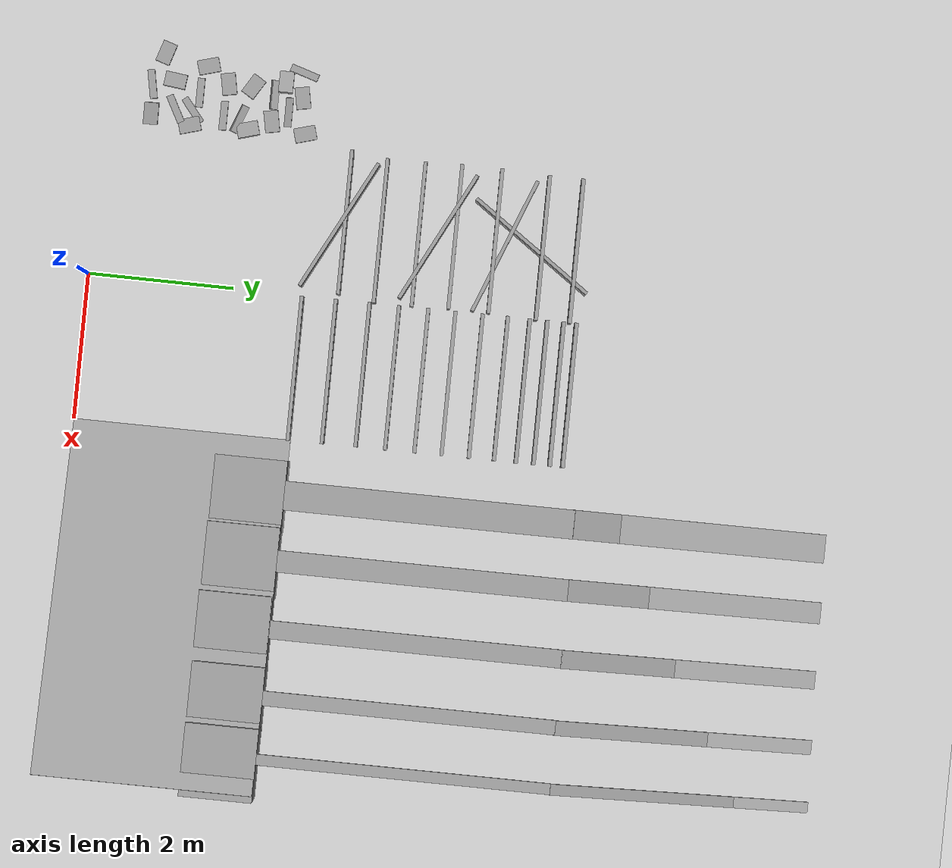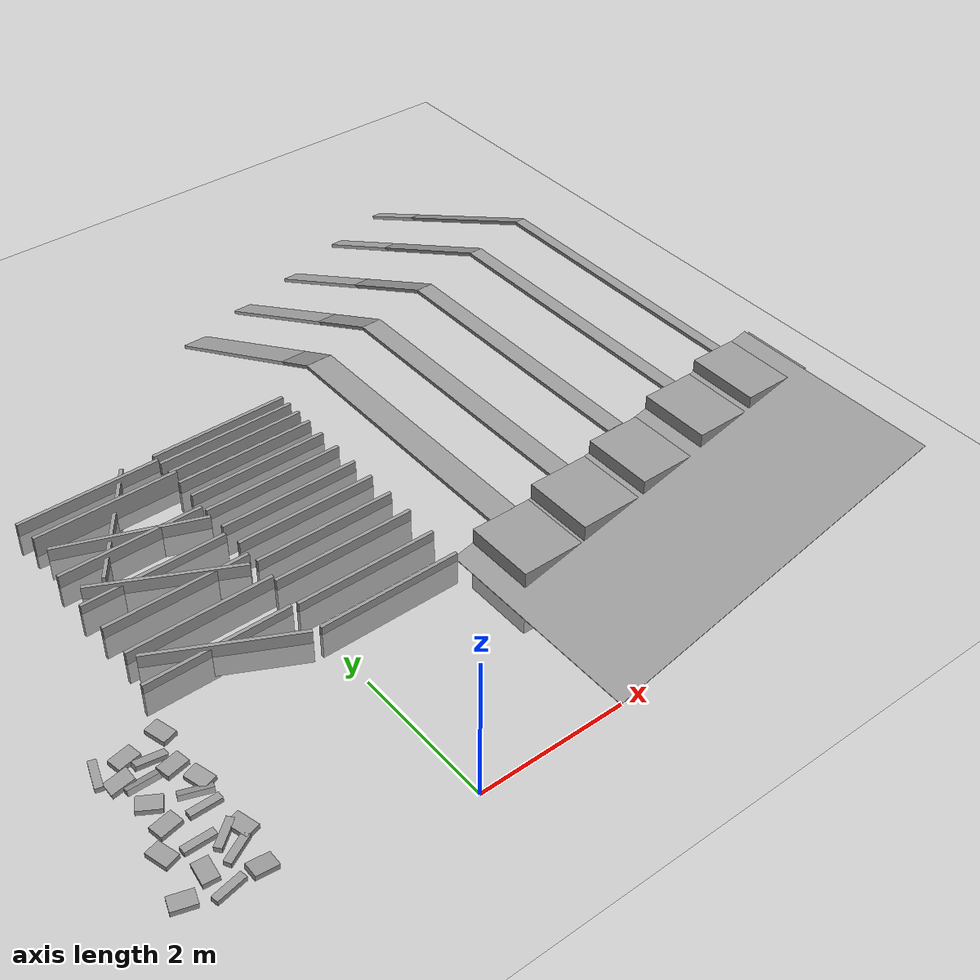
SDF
<sdf version="1.7">
 <world name="default">
  <model name="ground_plane">
   <static>1</static>
   <link name="link">
    <collision name="collision">
     <geometry><plane><normal>0 0 1</normal><size>100 100</size></plane></geometry>
     <surface><friction><ode><mu>200</mu><mu2>200</mu2></ode></friction></surface>
    </collision>
    <visual name="visual">
     <cast_shadows>0</cast_shadows>
     <geometry><plane><normal>0 0 1</normal><size>100 100</size></plane></geometry>
     <material>
      <script><uri>file://media/materials/scripts/gazebo.material</uri><name>Gazebo/Grey</name></script>
     </material>
    </visual>
   </link>
  </model>
  <model name="board_1">
   <pose>4.428 1.5 0.601 -0.247 1e-06 1.5708</pose>
   <link name="Stairs_5">
    <visual name="Stairs_5_Visual_0">
     <pose>0 0 0.005 0 -0 0</pose>
     <geometry><box><size>3 5 0.01</size></box></geometry>
     <material>
      <script><uri>file://media/materials/scripts/gazebo.material</uri><name>Gazebo/Grey</name></script>
      <ambient>1 1 1 1</ambient>
     </material>
     <meta><layer>0</layer></meta>
    </visual>
    <collision name="Stairs_5_Collision_0">
     <geometry><box><size>3 5 0.01</size></box></geometry>
     <pose>0 0 0.005 0 -0 0</pose>
     <surface><friction><ode><mu>200</mu><mu2>200</mu2></ode></friction></surface>
    </collision>
   </link>
   <static>1</static>
  </model>
  <model name="box_0.3_0.2_0.1">
   <pose>-3.01255 1.36536 0 0 -0 1.85347</pose>
   <link name="Stairs_9">
    <visual name="Stairs_9_Visual_0">
     <pose>0 0 0.035 0 -0 0</pose>
     <geometry><box><size>0.3 0.2 0.07</size></box></geometry>
     <material>
      <script><uri>file://media/materials/scripts/gazebo.material</uri><name>Gazebo/Grey</name></script>
      <ambient>1 1 1 1</ambient>
     </material>
     <meta><layer>0</layer></meta>
    </visual>
    <collision name="Stairs_9_Collision_0">
     <geometry><box><size>0.3 0.2 0.07</size></box></geometry>
     <pose>0 0 0.035 0 -0 0</pose>
     <surface><friction><ode><mu>200</mu><mu2>200</mu2></ode></friction></surface>
    </collision>
   </link>
   <static>1</static>
  </model>
  <model name="box_0.4_0.1_0.07_5">
   <pose>-2.38032 1.20344 0 0 -0 0.675768</pose>
   <link name="Stairs_14">
    <visual name="Stairs_14_Visual_0">
     <pose>0 0 0.035 0 -0 0</pose>
     <geometry><box><size>0.4 0.1 0.07</size></box></geometry>
     <material>
      <script><uri>file://media/materials/scripts/gazebo.material</uri><name>Gazebo/Grey</name></script>
      <ambient>1 1 1 1</ambient>
     </material>
     <meta><layer>0</layer></meta>
    </visual>
    <collision name="Stairs_14_Collision_0">
     <geometry><box><size>0.4 0.1 0.07</size></box></geometry>
     <pose>0 0 0.035 0 -0 0</pose>
     <surface><friction><ode><mu>200</mu><mu2>200</mu2></ode></friction></surface>
    </collision>
   </link>
   <static>1</static>
  </model>
  <model name="box_0.3_0.2_0.1_7">
   <pose>-2.29296 0.634577 0 0 0.156533 0</pose>
   <link name="Stairs_9">
    <visual name="Stairs_9_Visual_0">
     <pose>0 0 0.035 0 -0 0</pose>
     <geometry><box><size>0.3 0.2 0.07</size></box></geometry>
     <material>
      <script><uri>file://media/materials/scripts/gazebo.material</uri><name>Gazebo/Grey</name></script>
      <ambient>1 1 1 1</ambient>
     </material>
     <meta><layer>0</layer></meta>
    </visual>
    <collision name="Stairs_9_Collision_0">
     <geometry><box><size>0.3 0.2 0.07</size></box></geometry>
     <pose>0 0 0.035 0 -0 0</pose>
     <surface><friction><ode><mu>200</mu><mu2>200</mu2></ode></friction></surface>
    </collision>
   </link>
   <static>1</static>
  </model>
  <model name="box_0.3_0.2_0.1_9">
   <pose>-2.79379 1.66334 0 0 -0 0.193818</pose>
   <link name="Stairs_9">
    <visual name="Stairs_9_Visual_0">
     <pose>0 0 0.035 0 -0 0</pose>
     <geometry><box><size>0.3 0.2 0.07</size></box></geometry>
     <material>
      <script><uri>file://media/materials/scripts/gazebo.material</uri><name>Gazebo/Grey</name></script>
      <ambient>1 1 1 1</ambient>
     </material>
     <meta><layer>0</layer></meta>
    </visual>
    <collision name="Stairs_9_Collision_0">
     <geometry><box><size>0.3 0.2 0.07</size></box></geometry>
     <pose>0 0 0.035 0 -0 0</pose>
     <surface><friction><ode><mu>200</mu><mu2>200</mu2></ode></friction></surface>
    </collision>
   </link>
   <static>1</static>
  </model>
  <model name="box_0.3_0.2_0.1_14">
   <pose>-3.13761 0.765182 0 0 0 -0.305362</pose>
   <link name="Stairs_9">
    <visual name="Stairs_9_Visual_0">
     <pose>0 0 0.035 0 -0 0</pose>
     <geometry><box><size>0.3 0.2 0.07</size></box></geometry>
     <material>
      <script><uri>file://media/materials/scripts/gazebo.material</uri><name>Gazebo/Grey</name></script>
      <ambient>1 1 1 1</ambient>
     </material>
     <meta><layer>0</layer></meta>
    </visual>
    <collision name="Stairs_9_Collision_0">
     <geometry><box><size>0.3 0.2 0.07</size></box></geometry>
     <pose>0 0 0.035 0 -0 0</pose>
     <surface><friction><ode><mu>200</mu><mu2>200</mu2></ode></friction></surface>
    </collision>
   </link>
   <static>1</static>
  </model>
  <model name="box_0.4_0.1_0.07_21">
   <pose>-2.33177 1.84563 0 -0.297405 -0 -0.354338</pose>
   <link name="Stairs_14">
    <visual name="Stairs_14_Visual_0">
     <pose>0 0 0.035 0 -0 0</pose>
     <geometry><box><size>0.4 0.1 0.07</size></box></geometry>
     <material>
      <script><uri>file://media/materials/scripts/gazebo.material</uri><name>Gazebo/Grey</name></script>
      <ambient>1 1 1 1</ambient>
     </material>
     <meta><layer>0</layer></meta>
    </visual>
    <collision name="Stairs_14_Collision_0">
     <geometry><box><size>0.4 0.1 0.07</size></box></geometry>
     <pose>0 0 0.035 0 -0 0</pose>
     <surface><friction><ode><mu>200</mu><mu2>200</mu2></ode></friction></surface>
    </collision>
   </link>
   <static>1</static>
  </model>
  <model name="box_0.3_0.2_0.1_25">
   <pose>-2.77079 0.926758 0 0.04132 0.005073 -1.6929</pose>
   <link name="Stairs_9">
    <visual name="Stairs_9_Visual_0">
     <pose>0 0 0.035 0 -0 0</pose>
     <geometry><box><size>0.3 0.2 0.07</size></box></geometry>
     <material>
      <script><uri>file://media/materials/scripts/gazebo.material</uri><name>Gazebo/Grey</name></script>
      <ambient>1 1 1 1</ambient>
     </material>
     <meta><layer>0</layer></meta>
    </visual>
    <collision name="Stairs_9_Collision_0">
     <geometry><box><size>0.3 0.2 0.07</size></box></geometry>
     <pose>0 0 0.035 0 -0 0</pose>
     <surface><friction><ode><mu>200</mu><mu2>200</mu2></ode></friction></surface>
    </collision>
   </link>
   <static>1</static>
  </model>
  <model name="box_0.4_0.1_0.07_34">
   <pose>-2.37805 0.96323 0 0 -0 0.493596</pose>
   <link name="Stairs_14">
    <visual name="Stairs_14_Visual_0">
     <pose>0 0 0.035 0 -0 0</pose>
     <geometry><box><size>0.4 0.1 0.07</size></box></geometry>
     <material>
      <script><uri>file://media/materials/scripts/gazebo.material</uri><name>Gazebo/Grey</name></script>
      <ambient>1 1 1 1</ambient>
     </material>
     <meta><layer>0</layer></meta>
    </visual>
    <collision name="Stairs_14_Collision_0">
     <geometry><box><size>0.4 0.1 0.07</size></box></geometry>
     <pose>0 0 0.035 0 -0 0</pose>
     <surface><friction><ode><mu>200</mu><mu2>200</mu2></ode></friction></surface>
    </collision>
   </link>
   <static>1</static>
  </model>
  <model name="box_0.4_0.1_0.07_35">
   <pose>-2.3534 1.63255 0 0 -0 0</pose>
   <link name="Stairs_14">
    <visual name="Stairs_14_Visual_0">
     <pose>0 0 0.035 0 -0 0</pose>
     <geometry><box><size>0.4 0.1 0.07</size></box></geometry>
     <material>
      <script><uri>file://media/materials/scripts/gazebo.material</uri><name>Gazebo/Grey</name></script>
      <ambient>1 1 1 1</ambient>
     </material>
     <meta><layer>0</layer></meta>
    </visual>
    <collision name="Stairs_14_Collision_0">
     <geometry><box><size>0.4 0.1 0.07</size></box></geometry>
     <pose>0 0 0.035 0 -0 0</pose>
     <surface><friction><ode><mu>200</mu><mu2>200</mu2></ode></friction></surface>
    </collision>
   </link>
   <static>1</static>
  </model>
  <model name="box_0.4_0.1_0.07_36">
   <pose>-2.63647 1.28112 0 0 -0 0</pose>
   <link name="Stairs_14">
    <visual name="Stairs_14_Visual_0">
     <pose>0 0 0.035 0 -0 0</pose>
     <geometry><box><size>0.4 0.1 0.07</size></box></geometry>
     <material>
      <script><uri>file://media/materials/scripts/gazebo.material</uri><name>Gazebo/Grey</name></script>
      <ambient>1 1 1 1</ambient>
     </material>
     <meta><layer>0</layer></meta>
    </visual>
    <collision name="Stairs_14_Collision_0">
     <geometry><box><size>0.4 0.1 0.07</size></box></geometry>
     <pose>0 0 0.035 0 -0 0</pose>
     <surface><friction><ode><mu>200</mu><mu2>200</mu2></ode></friction></surface>
    </collision>
   </link>
   <static>1</static>
  </model>
  <model name="box_0.3_0.2_0.1_9_clone">
   <pose>-2.33907 2.30045 0 0 -0 0.193818</pose>
   <link name="Stairs_9">
    <visual name="Stairs_9_Visual_0">
     <pose>0 0 0.035 0 -0 0</pose>
     <geometry><box><size>0.3 0.2 0.07</size></box></geometry>
     <material>
      <script><uri>file://media/materials/scripts/gazebo.material</uri><name>Gazebo/Grey</name></script>
      <ambient>1 1 1 1</ambient>
     </material>
     <meta><layer>0</layer></meta>
    </visual>
    <collision name="Stairs_9_Collision_0">
     <geometry><box><size>0.3 0.2 0.07</size></box></geometry>
     <pose>0 0 0.035 0 -0 0</pose>
     <surface><friction><ode><mu>200</mu><mu2>200</mu2></ode></friction></surface>
    </collision>
   </link>
   <static>1</static>
  </model>
  <model name="box_0.3_0.2_0.1_9_clone_0">
   <pose>-2.70235 2.69599 0 0 -0 0.193818</pose>
   <link name="Stairs_9">
    <visual name="Stairs_9_Visual_0">
     <pose>0 0 0.035 0 -0 0</pose>
     <geometry><box><size>0.3 0.2 0.07</size></box></geometry>
     <material>
      <script><uri>file://media/materials/scripts/gazebo.material</uri><name>Gazebo/Grey</name></script>
      <ambient>1 1 1 1</ambient>
     </material>
     <meta><layer>0</layer></meta>
    </visual>
    <collision name="Stairs_9_Collision_0">
     <geometry><box><size>0.3 0.2 0.07</size></box></geometry>
     <pose>0 0 0.035 0 -0 0</pose>
     <surface><friction><ode><mu>200</mu><mu2>200</mu2></ode></friction></surface>
    </collision>
   </link>
   <static>1</static>
  </model>
  <model name="box_0.4_0.1_0.07_28_clone_2">
   <pose>-3.05202 2.68853 0 0 -0 1.2714</pose>
   <link name="Stairs_14">
    <visual name="Stairs_14_Visual_0">
     <pose>0 0 0.035 0 -0 0</pose>
     <geometry><box><size>0.4 0.1 0.07</size></box></geometry>
     <material>
      <script><uri>file://media/materials/scripts/gazebo.material</uri><name>Gazebo/Grey</name></script>
      <ambient>1 1 1 1</ambient>
     </material>
     <meta><layer>0</layer></meta>
    </visual>
    <collision name="Stairs_14_Collision_0">
     <geometry><box><size>0.4 0.1 0.07</size></box></geometry>
     <pose>0 0 0.035 0 -0 0</pose>
     <surface><friction><ode><mu>200</mu><mu2>200</mu2></ode></friction></surface>
    </collision>
   </link>
   <static>1</static>
  </model>
  <model name="box_0.4_0.1_0.07_36_clone">
   <pose>-2.70922 2.29202 0 -0.328405 0 0</pose>
   <link name="Stairs_14">
    <visual name="Stairs_14_Visual_0">
     <pose>0 0 0.035 0 -0 0</pose>
     <geometry><box><size>0.4 0.1 0.07</size></box></geometry>
     <material>
      <script><uri>file://media/materials/scripts/gazebo.material</uri><name>Gazebo/Grey</name></script>
      <ambient>1 1 1 1</ambient>
     </material>
     <meta><layer>0</layer></meta>
    </visual>
    <collision name="Stairs_14_Collision_0">
     <geometry><box><size>0.4 0.1 0.07</size></box></geometry>
     <pose>0 0 0.035 0 -0 0</pose>
     <surface><friction><ode><mu>200</mu><mu2>200</mu2></ode></friction></surface>
    </collision>
   </link>
   <static>1</static>
  </model>
  <model name="box_0.4_0.1_0.07_36_clone_0">
   <pose>-2.4986 2.52155 0 0 0.192346 0</pose>
   <link name="Stairs_14">
    <visual name="Stairs_14_Visual_0">
     <pose>0 0 0.035 0 -0 0</pose>
     <geometry><box><size>0.4 0.1 0.07</size></box></geometry>
     <material>
      <script><uri>file://media/materials/scripts/gazebo.material</uri><name>Gazebo/Grey</name></script>
      <ambient>1 1 1 1</ambient>
     </material>
     <meta><layer>0</layer></meta>
    </visual>
    <collision name="Stairs_14_Collision_0">
     <geometry><box><size>0.4 0.1 0.07</size></box></geometry>
     <pose>0 0 0.035 0 -0 0</pose>
     <surface><friction><ode><mu>200</mu><mu2>200</mu2></ode></friction></surface>
    </collision>
   </link>
   <static>1</static>
  </model>
  <model name="box_0.3_0.2_0.1_8_clone_clone_3">
   <pose>-2.7935 2.00782 0 0 0 -0.545678</pose>
   <link name="Stairs_9">
    <visual name="Stairs_9_Visual_0">
     <pose>0 0 0.035 0 -0 0</pose>
     <geometry><box><size>0.3 0.2 0.07</size></box></geometry>
     <material>
      <script><uri>file://media/materials/scripts/gazebo.material</uri><name>Gazebo/Grey</name></script>
      <ambient>1 1 1 1</ambient>
     </material>
     <meta><layer>0</layer></meta>
    </visual>
    <collision name="Stairs_9_Collision_0">
     <geometry><box><size>0.3 0.2 0.07</size></box></geometry>
     <pose>0 0 0.035 0 -0 0</pose>
     <surface><friction><ode><mu>200</mu><mu2>200</mu2></ode></friction></surface>
    </collision>
   </link>
   <static>1</static>
  </model>
  <model name="box_0.3_0.2_0.1_26_clone">
   <pose>-2.89032 2.44841 0 0 -0.200079 0</pose>
   <link name="Stairs_9">
    <visual name="Stairs_9_Visual_0">
     <pose>0 0 0.035 0 -0 0</pose>
     <geometry><box><size>0.3 0.2 0.07</size></box></geometry>
     <material>
      <script><uri>file://media/materials/scripts/gazebo.material</uri><name>Gazebo/Grey</name></script>
      <ambient>1 1 1 1</ambient>
     </material>
     <meta><layer>0</layer></meta>
    </visual>
    <collision name="Stairs_9_Collision_0">
     <geometry><box><size>0.3 0.2 0.07</size></box></geometry>
     <pose>0 0 0.035 0 -0 0</pose>
     <surface><friction><ode><mu>200</mu><mu2>200</mu2></ode></friction></surface>
    </collision>
   </link>
   <static>1</static>
  </model>
  <model name="box_0.3_0.2_0.1_clone_0">
   <pose>-2.21131 2.77777 0 0 -0 1.85347</pose>
   <link name="Stairs_9">
    <visual name="Stairs_9_Visual_0">
     <pose>0 0 0.035 0 -0 0</pose>
     <geometry><box><size>0.3 0.2 0.07</size></box></geometry>
     <material>
      <script><uri>file://media/materials/scripts/gazebo.material</uri><name>Gazebo/Grey</name></script>
      <ambient>1 1 1 1</ambient>
     </material>
     <meta><layer>0</layer></meta>
    </visual>
    <collision name="Stairs_9_Collision_0">
     <geometry><box><size>0.3 0.2 0.07</size></box></geometry>
     <pose>0 0 0.035 0 -0 0</pose>
     <surface><friction><ode><mu>200</mu><mu2>200</mu2></ode></friction></surface>
    </collision>
   </link>
   <static>1</static>
  </model>
  <model name="box_0.3_0.2_0.1_clone_1">
   <pose>-2.19194 1.98573 0 -0.098342 0 1.85347</pose>
   <link name="Stairs_9">
    <visual name="Stairs_9_Visual_0">
     <pose>0 0 0.035 0 -0 0</pose>
     <geometry><box><size>0.3 0.2 0.07</size></box></geometry>
     <material>
      <script><uri>file://media/materials/scripts/gazebo.material</uri><name>Gazebo/Grey</name></script>
      <ambient>1 1 1 1</ambient>
     </material>
     <meta><layer>0</layer></meta>
    </visual>
    <collision name="Stairs_9_Collision_0">
     <geometry><box><size>0.3 0.2 0.07</size></box></geometry>
     <pose>0 0 0.035 0 -0 0</pose>
     <surface><friction><ode><mu>200</mu><mu2>200</mu2></ode></friction></surface>
    </collision>
   </link>
   <static>1</static>
  </model>
  <model name="box_0.3_0.2_0.1_clone_2">
   <pose>-2.17677 1.17861 0 0 -0 1.85347</pose>
   <link name="Stairs_9">
    <visual name="Stairs_9_Visual_0">
     <pose>0 0 0.035 0 -0 0</pose>
     <geometry><box><size>0.3 0.2 0.07</size></box></geometry>
     <material>
      <script><uri>file://media/materials/scripts/gazebo.material</uri><name>Gazebo/Grey</name></script>
      <ambient>1 1 1 1</ambient>
     </material>
     <meta><layer>0</layer></meta>
    </visual>
    <collision name="Stairs_9_Collision_0">
     <geometry><box><size>0.3 0.2 0.07</size></box></geometry>
     <pose>0 0 0.035 0 -0 0</pose>
     <surface><friction><ode><mu>200</mu><mu2>200</mu2></ode></friction></surface>
    </collision>
   </link>
   <static>1</static>
  </model>
  <model name="box_0.4_0.1_0.07_10_clone">
   <pose>-2.68892 0.614335 0 0 -0 0.188316</pose>
   <link name="Stairs_14">
    <visual name="Stairs_14_Visual_0">
     <pose>0 0 0.035 0 -0 0</pose>
     <geometry><box><size>0.4 0.1 0.07</size></box></geometry>
     <material>
      <script><uri>file://media/materials/scripts/gazebo.material</uri><name>Gazebo/Grey</name></script>
      <ambient>1 1 1 1</ambient>
     </material>
     <meta><layer>0</layer></meta>
    </visual>
    <collision name="Stairs_14_Collision_0">
     <geometry><box><size>0.4 0.1 0.07</size></box></geometry>
     <pose>0 0 0.035 0 -0 0</pose>
     <surface><friction><ode><mu>200</mu><mu2>200</mu2></ode></friction></surface>
    </collision>
   </link>
   <static>1</static>
  </model>
  <model name="board_2_0.05_0.5">
   <pose>1.01214 2.93485 -0.395328 0 -0 1.57376</pose>
   <link name="Stairs_2">
    <visual name="Stairs_2_Visual_0">
     <pose>0.025 -0 0.25 0 -0 0</pose>
     <geometry><box><size>0.05 2 0.5</size></box></geometry>
     <material>
      <script><uri>file://media/materials/scripts/gazebo.material</uri><name>Gazebo/Grey</name></script>
      <ambient>1 1 1 1</ambient>
     </material>
     <meta><layer>0</layer></meta>
    </visual>
    <collision name="Stairs_2_Collision_0">
     <geometry><box><size>0.05 2 0.5</size></box></geometry>
     <pose>0.025 -0 0.25 0 -0 0</pose>
    </collision>
   </link>
   <static>1</static>
  </model>
  <model name="board_2_0.05_0.5_clone">
   <pose>1.00978 3.40497 -0.383537 0 -0 1.57376</pose>
   <link name="Stairs_2">
    <visual name="Stairs_2_Visual_0">
     <pose>0.025 -0 0.25 0 -0 0</pose>
     <geometry><box><size>0.05 2 0.5</size></box></geometry>
     <material>
      <script><uri>file://media/materials/scripts/gazebo.material</uri><name>Gazebo/Grey</name></script>
      <ambient>1 1 1 1</ambient>
     </material>
     <meta><layer>0</layer></meta>
    </visual>
    <collision name="Stairs_2_Collision_0">
     <geometry><box><size>0.05 2 0.5</size></box></geometry>
     <pose>0.025 -0 0.25 0 -0 0</pose>
    </collision>
   </link>
   <static>1</static>
  </model>
  <model name="board_2_0.05_0.5_clone_0">
   <pose>1.00493 3.87218 -0.359612 0 -0 1.57376</pose>
   <link name="Stairs_2">
    <visual name="Stairs_2_Visual_0">
     <pose>0.025 -0 0.25 0 -0 0</pose>
     <geometry><box><size>0.05 2 0.5</size></box></geometry>
     <material>
      <script><uri>file://media/materials/scripts/gazebo.material</uri><name>Gazebo/Grey</name></script>
      <ambient>1 1 1 1</ambient>
     </material>
     <meta><layer>0</layer></meta>
    </visual>
    <collision name="Stairs_2_Collision_0">
     <geometry><box><size>0.05 2 0.5</size></box></geometry>
     <pose>0.025 -0 0.25 0 -0 0</pose>
    </collision>
   </link>
   <static>1</static>
  </model>
  <model name="board_2_0.05_0.5_clone_1">
   <pose>1.0088 4.28081 -0.351548 0 -0 1.57376</pose>
   <link name="Stairs_2">
    <visual name="Stairs_2_Visual_0">
     <pose>0.025 -0 0.25 0 -0 0</pose>
     <geometry><box><size>0.05 2 0.5</size></box></geometry>
     <material>
      <script><uri>file://media/materials/scripts/gazebo.material</uri><name>Gazebo/Grey</name></script>
      <ambient>1 1 1 1</ambient>
     </material>
     <meta><layer>0</layer></meta>
    </visual>
    <collision name="Stairs_2_Collision_0">
     <geometry><box><size>0.05 2 0.5</size></box></geometry>
     <pose>0.025 -0 0.25 0 -0 0</pose>
    </collision>
   </link>
   <static>1</static>
  </model>
  <model name="board_2_0.05_0.5_clone_2">
   <pose>1.00664 4.68522 -0.348581 0 -0 1.57376</pose>
   <link name="Stairs_2">
    <visual name="Stairs_2_Visual_0">
     <pose>0.025 -0 0.25 0 -0 0</pose>
     <geometry><box><size>0.05 2 0.5</size></box></geometry>
     <material>
      <script><uri>file://media/materials/scripts/gazebo.material</uri><name>Gazebo/Grey</name></script>
      <ambient>1 1 1 1</ambient>
     </material>
     <meta><layer>0</layer></meta>
    </visual>
    <collision name="Stairs_2_Collision_0">
     <geometry><box><size>0.05 2 0.5</size></box></geometry>
     <pose>0.025 -0 0.25 0 -0 0</pose>
    </collision>
   </link>
   <static>1</static>
  </model>
  <model name="board_2_0.05_0.5_clone_3">
   <pose>1.006 5.06117 -0.355292 0 -0 1.57376</pose>
   <link name="Stairs_2">
    <visual name="Stairs_2_Visual_0">
     <pose>0.025 -0 0.25 0 -0 0</pose>
     <geometry><box><size>0.05 2 0.5</size></box></geometry>
     <material>
      <script><uri>file://media/materials/scripts/gazebo.material</uri><name>Gazebo/Grey</name></script>
      <ambient>1 1 1 1</ambient>
     </material>
     <meta><layer>0</layer></meta>
    </visual>
    <collision name="Stairs_2_Collision_0">
     <geometry><box><size>0.05 2 0.5</size></box></geometry>
     <pose>0.025 -0 0.25 0 -0 0</pose>
    </collision>
   </link>
   <static>1</static>
  </model>
  <model name="board_2_0.05_0.5_clone_4">
   <pose>1.00757 5.43904 -0.3493 0 -0 1.57376</pose>
   <link name="Stairs_2">
    <visual name="Stairs_2_Visual_0">
     <pose>0.025 -0 0.25 0 -0 0</pose>
     <geometry><box><size>0.05 2 0.5</size></box></geometry>
     <material>
      <script><uri>file://media/materials/scripts/gazebo.material</uri><name>Gazebo/Grey</name></script>
      <ambient>1 1 1 1</ambient>
     </material>
     <meta><layer>0</layer></meta>
    </visual>
    <collision name="Stairs_2_Collision_0">
     <geometry><box><size>0.05 2 0.5</size></box></geometry>
     <pose>0.025 -0 0.25 0 -0 0</pose>
    </collision>
   </link>
   <static>1</static>
  </model>
  <model name="board_2_0.05_0.5_clone_5">
   <pose>1.00439 5.78761 -0.34635 0 -0 1.57376</pose>
   <link name="Stairs_2">
    <visual name="Stairs_2_Visual_0">
     <pose>0.025 -0 0.25 0 -0 0</pose>
     <geometry><box><size>0.05 2 0.5</size></box></geometry>
     <material>
      <script><uri>file://media/materials/scripts/gazebo.material</uri><name>Gazebo/Grey</name></script>
      <ambient>1 1 1 1</ambient>
     </material>
     <meta><layer>0</layer></meta>
    </visual>
    <collision name="Stairs_2_Collision_0">
     <geometry><box><size>0.05 2 0.5</size></box></geometry>
     <pose>0.025 -0 0.25 0 -0 0</pose>
    </collision>
   </link>
   <static>1</static>
  </model>
  <model name="board_2_0.05_0.5_clone_6">
   <pose>1.00784 6.0909 -0.337509 0 -0 1.57376</pose>
   <link name="Stairs_2">
    <visual name="Stairs_2_Visual_0">
     <pose>0.025 -0 0.25 0 -0 0</pose>
     <geometry><box><size>0.05 2 0.5</size></box></geometry>
     <material>
      <script><uri>file://media/materials/scripts/gazebo.material</uri><name>Gazebo/Grey</name></script>
      <ambient>1 1 1 1</ambient>
     </material>
     <meta><layer>0</layer></meta>
    </visual>
    <collision name="Stairs_2_Collision_0">
     <geometry><box><size>0.05 2 0.5</size></box></geometry>
     <pose>0.025 -0 0.25 0 -0 0</pose>
    </collision>
   </link>
   <static>1</static>
  </model>
  <model name="board_2_0.05_0.5_clone_7">
   <pose>1.0043 6.33401 -0.331651 0 -0 1.57376</pose>
   <link name="Stairs_2">
    <visual name="Stairs_2_Visual_0">
     <pose>0.025 -0 0.25 0 -0 0</pose>
     <geometry><box><size>0.05 2 0.5</size></box></geometry>
     <material>
      <script><uri>file://media/materials/scripts/gazebo.material</uri><name>Gazebo/Grey</name></script>
      <ambient>1 1 1 1</ambient>
     </material>
     <meta><layer>0</layer></meta>
    </visual>
    <collision name="Stairs_2_Collision_0">
     <geometry><box><size>0.05 2 0.5</size></box></geometry>
     <pose>0.025 -0 0.25 0 -0 0</pose>
    </collision>
   </link>
   <static>1</static>
  </model>
  <model name="board_2_0.05_0.5_clone_8">
   <pose>1.00649 6.55911 -0.331651 0 -0 1.57376</pose>
   <link name="Stairs_2">
    <visual name="Stairs_2_Visual_0">
     <pose>0.025 -0 0.25 0 -0 0</pose>
     <geometry><box><size>0.05 2 0.5</size></box></geometry>
     <material>
      <script><uri>file://media/materials/scripts/gazebo.material</uri><name>Gazebo/Grey</name></script>
      <ambient>1 1 1 1</ambient>
     </material>
     <meta><layer>0</layer></meta>
    </visual>
    <collision name="Stairs_2_Collision_0">
     <geometry><box><size>0.05 2 0.5</size></box></geometry>
     <pose>0.025 -0 0.25 0 -0 0</pose>
    </collision>
   </link>
   <static>1</static>
  </model>
  <model name="board_2_0.05_0.5_clone_9">
   <pose>1.00324 6.73719 -0.331651 0 -0 1.57376</pose>
   <link name="Stairs_2">
    <visual name="Stairs_2_Visual_0">
     <pose>0.025 -0 0.25 0 -0 0</pose>
     <geometry><box><size>0.05 2 0.5</size></box></geometry>
     <material>
      <script><uri>file://media/materials/scripts/gazebo.material</uri><name>Gazebo/Grey</name></script>
      <ambient>1 1 1 1</ambient>
     </material>
     <meta><layer>0</layer></meta>
    </visual>
    <collision name="Stairs_2_Collision_0">
     <geometry><box><size>0.05 2 0.5</size></box></geometry>
     <pose>0.025 -0 0.25 0 -0 0</pose>
    </collision>
   </link>
   <static>1</static>
  </model>
  <model name="board_2_0.05_0.5_clone_10">
   <pose>-1.02574 3.34784 -0.331651 0 -0 1.09588</pose>
   <link name="Stairs_2">
    <visual name="Stairs_2_Visual_0">
     <pose>0.025 -0 0.25 0 -0 0</pose>
     <geometry><box><size>0.05 2 0.5</size></box></geometry>
     <material>
      <script><uri>file://media/materials/scripts/gazebo.material</uri><name>Gazebo/Grey</name></script>
      <ambient>1 1 1 1</ambient>
     </material>
     <meta><layer>0</layer></meta>
    </visual>
    <collision name="Stairs_2_Collision_0">
     <geometry><box><size>0.05 2 0.5</size></box></geometry>
     <pose>0.025 -0 0.25 0 -0 0</pose>
    </collision>
   </link>
   <static>1</static>
  </model>
  <model name="board_2_0.05_0.5_clone_11">
   <pose>-1.06224 3.42152 -0.385461 0 -0 1.57376</pose>
   <link name="Stairs_2">
    <visual name="Stairs_2_Visual_0">
     <pose>0.025 -0 0.25 0 -0 0</pose>
     <geometry><box><size>0.05 2 0.5</size></box></geometry>
     <material>
      <script><uri>file://media/materials/scripts/gazebo.material</uri><name>Gazebo/Grey</name></script>
      <ambient>1 1 1 1</ambient>
     </material>
     <meta><layer>0</layer></meta>
    </visual>
    <collision name="Stairs_2_Collision_0">
     <geometry><box><size>0.05 2 0.5</size></box></geometry>
     <pose>0.025 -0 0.25 0 -0 0</pose>
    </collision>
   </link>
   <static>1</static>
  </model>
  <model name="board_2_0.05_0.5_clone_12">
   <pose>-0.988098 3.92215 -0.331651 0 -0 1.57376</pose>
   <link name="Stairs_2">
    <visual name="Stairs_2_Visual_0">
     <pose>0.025 -0 0.25 0 -0 0</pose>
     <geometry><box><size>0.05 2 0.5</size></box></geometry>
     <material>
      <script><uri>file://media/materials/scripts/gazebo.material</uri><name>Gazebo/Grey</name></script>
      <ambient>1 1 1 1</ambient>
     </material>
     <meta><layer>0</layer></meta>
    </visual>
    <collision name="Stairs_2_Collision_0">
     <geometry><box><size>0.05 2 0.5</size></box></geometry>
     <pose>0.025 -0 0.25 0 -0 0</pose>
    </collision>
   </link>
   <static>1</static>
  </model>
  <model name="board_2_0.05_0.5_clone_13">
   <pose>-0.996329 4.44592 -0.352741 0 -0 1.57376</pose>
   <link name="Stairs_2">
    <visual name="Stairs_2_Visual_0">
     <pose>0.025 -0 0.25 0 -0 0</pose>
     <geometry><box><size>0.05 2 0.5</size></box></geometry>
     <material>
      <script><uri>file://media/materials/scripts/gazebo.material</uri><name>Gazebo/Grey</name></script>
      <ambient>1 1 1 1</ambient>
     </material>
     <meta><layer>0</layer></meta>
    </visual>
    <collision name="Stairs_2_Collision_0">
     <geometry><box><size>0.05 2 0.5</size></box></geometry>
     <pose>0.025 -0 0.25 0 -0 0</pose>
    </collision>
   </link>
   <static>1</static>
  </model>
  <model name="board_2_0.05_0.5_clone_14">
   <pose>-1.01246 4.95271 -0.384988 0 -0 1.57376</pose>
   <link name="Stairs_2">
    <visual name="Stairs_2_Visual_0">
     <pose>0.025 -0 0.25 0 -0 0</pose>
     <geometry><box><size>0.05 2 0.5</size></box></geometry>
     <material>
      <script><uri>file://media/materials/scripts/gazebo.material</uri><name>Gazebo/Grey</name></script>
      <ambient>1 1 1 1</ambient>
     </material>
     <meta><layer>0</layer></meta>
    </visual>
    <collision name="Stairs_2_Collision_0">
     <geometry><box><size>0.05 2 0.5</size></box></geometry>
     <pose>0.025 -0 0.25 0 -0 0</pose>
    </collision>
   </link>
   <static>1</static>
  </model>
  <model name="board_2_0.05_0.5_clone_15">
   <pose>-1.0066 5.50673 -0.331651 0 -0 1.57376</pose>
   <link name="Stairs_2">
    <visual name="Stairs_2_Visual_0">
     <pose>0.025 -0 0.25 0 -0 0</pose>
     <geometry><box><size>0.05 2 0.5</size></box></geometry>
     <material>
      <script><uri>file://media/materials/scripts/gazebo.material</uri><name>Gazebo/Grey</name></script>
      <ambient>1 1 1 1</ambient>
     </material>
     <meta><layer>0</layer></meta>
    </visual>
    <collision name="Stairs_2_Collision_0">
     <geometry><box><size>0.05 2 0.5</size></box></geometry>
     <pose>0.025 -0 0.25 0 -0 0</pose>
    </collision>
   </link>
   <static>1</static>
  </model>
  <model name="board_2_0.05_0.5_clone_16">
   <pose>-0.966688 6.02456 -0.391504 0 -0 2.52919</pose>
   <link name="Stairs_2">
    <visual name="Stairs_2_Visual_0">
     <pose>0.025 -0 0.25 0 -0 0</pose>
     <geometry><box><size>0.05 2 0.5</size></box></geometry>
     <material>
      <script><uri>file://media/materials/scripts/gazebo.material</uri><name>Gazebo/Grey</name></script>
      <ambient>1 1 1 1</ambient>
     </material>
     <meta><layer>0</layer></meta>
    </visual>
    <collision name="Stairs_2_Collision_0">
     <geometry><box><size>0.05 2 0.5</size></box></geometry>
     <pose>0.025 -0 0.25 0 -0 0</pose>
    </collision>
   </link>
   <static>1</static>
  </model>
  <model name="board_2_0.05_0.5_clone_17">
   <pose>-0.971435 6.16534 -0.217573 0 -0 1.57376</pose>
   <link name="Stairs_2">
    <visual name="Stairs_2_Visual_0">
     <pose>0.025 -0 0.25 0 -0 0</pose>
     <geometry><box><size>0.05 2 0.5</size></box></geometry>
     <material>
      <script><uri>file://media/materials/scripts/gazebo.material</uri><name>Gazebo/Grey</name></script>
      <ambient>1 1 1 1</ambient>
     </material>
     <meta><layer>0</layer></meta>
    </visual>
    <collision name="Stairs_2_Collision_0">
     <geometry><box><size>0.05 2 0.5</size></box></geometry>
     <pose>0.025 -0 0.25 0 -0 0</pose>
    </collision>
   </link>
   <static>1</static>
  </model>
  <model name="board_2_0.05_0.5_clone_18">
   <pose>-0.995203 4.72231 -0.331651 0 -0 1.10153</pose>
   <link name="Stairs_2">
    <visual name="Stairs_2_Visual_0">
     <pose>0.025 -0 0.25 0 -0 0</pose>
     <geometry><box><size>0.05 2 0.5</size></box></geometry>
     <material>
      <script><uri>file://media/materials/scripts/gazebo.material</uri><name>Gazebo/Grey</name></script>
      <ambient>1 1 1 1</ambient>
     </material>
     <meta><layer>0</layer></meta>
    </visual>
    <collision name="Stairs_2_Collision_0">
     <geometry><box><size>0.05 2 0.5</size></box></geometry>
     <pose>0.025 -0 0.25 0 -0 0</pose>
    </collision>
   </link>
   <static>1</static>
  </model>
  <model name="board_2_0.05_0.5_clone_19">
   <pose>-0.958025 5.64686 -0.331651 0 -0 1.20195</pose>
   <link name="Stairs_2">
    <visual name="Stairs_2_Visual_0">
     <pose>0.025 -0 0.25 0 -0 0</pose>
     <geometry><box><size>0.05 2 0.5</size></box></geometry>
     <material>
      <script><uri>file://media/materials/scripts/gazebo.material</uri><name>Gazebo/Grey</name></script>
      <ambient>1 1 1 1</ambient>
     </material>
     <meta><layer>0</layer></meta>
    </visual>
    <collision name="Stairs_2_Collision_0">
     <geometry><box><size>0.05 2 0.5</size></box></geometry>
     <pose>0.025 -0 0.25 0 -0 0</pose>
    </collision>
   </link>
   <static>1</static>
  </model>
  <model name="board_2_0.05_0.5_clone_20">
   <pose>-0.97812 6.63381 -0.331651 0 -0 1.57376</pose>
   <link name="Stairs_2">
    <visual name="Stairs_2_Visual_0">
     <pose>0.025 -0 0.25 0 -0 0</pose>
     <geometry><box><size>0.05 2 0.5</size></box></geometry>
     <material>
      <script><uri>file://media/materials/scripts/gazebo.material</uri><name>Gazebo/Grey</name></script>
      <ambient>1 1 1 1</ambient>
     </material>
     <meta><layer>0</layer></meta>
    </visual>
    <collision name="Stairs_2_Collision_0">
     <geometry><box><size>0.05 2 0.5</size></box></geometry>
     <pose>0.025 -0 0.25 0 -0 0</pose>
    </collision>
   </link>
   <static>1</static>
  </model>
  <model name="board_4_0.4_0.05">
   <pose>2.76692 4.99699 0.246036 0 -0 0</pose>
   <link name="Stairs_6">
    <visual name="Stairs_6_Visual_0">
     <pose>0 0 0.025 0 -0 0</pose>
     <geometry><box><size>0.4 4 0.05</size></box></geometry>
     <material>
      <script><uri>file://media/materials/scripts/gazebo.material</uri><name>Gazebo/Grey</name></script>
      <ambient>1 1 1 1</ambient>
     </material>
     <meta><layer>0</layer></meta>
    </visual>
    <collision name="Stairs_6_Collision_0">
     <geometry><box><size>0.4 4 0.05</size></box></geometry>
     <pose>0 0 0.025 0 -0 0</pose>
    </collision>
   </link>
   <static>1</static>
  </model>
  <model name="board_4_0.3_0.05">
   <pose>3.66782 4.99735 0.47498 0 -0 0</pose>
   <link name="Stairs_9">
    <visual name="Stairs_9_Visual_0">
     <pose>0 0 0.025 0 -0 0</pose>
     <geometry><box><size>0.3 4 0.05</size></box></geometry>
     <material>
      <script><uri>file://media/materials/scripts/gazebo.material</uri><name>Gazebo/Grey</name></script>
      <ambient>1 1 1 1</ambient>
     </material>
     <meta><layer>0</layer></meta>
    </visual>
    <collision name="Stairs_9_Collision_0">
     <geometry><box><size>0.3 4 0.05</size></box></geometry>
     <pose>0 0 0.025 0 -0 0</pose>
    </collision>
   </link>
   <static>1</static>
  </model>
  <model name="board_4_0.25_0.05">
   <pose>4.60007 4.99969 0.688816 0 -0 0</pose>
   <link name="Stairs_11">
    <visual name="Stairs_11_Visual_0">
     <pose>0 0 0.025 0 -0 0</pose>
     <geometry><box><size>0.25 4 0.05</size></box></geometry>
     <material>
      <script><uri>file://media/materials/scripts/gazebo.material</uri><name>Gazebo/Grey</name></script>
      <ambient>1 1 1 1</ambient>
     </material>
     <meta><layer>0</layer></meta>
    </visual>
    <collision name="Stairs_11_Collision_0">
     <geometry><box><size>0.25 4 0.05</size></box></geometry>
     <pose>0 0 0.025 0 -0 0</pose>
    </collision>
   </link>
   <static>1</static>
  </model>
  <model name="board_4_0.2_0.05">
   <pose>5.52485 4.99957 0.924214 0 -0 0</pose>
   <link name="Stairs_13">
    <visual name="Stairs_13_Visual_0">
     <pose>0 0 0.025 0 -0 0</pose>
     <geometry><box><size>0.2 4 0.05</size></box></geometry>
     <material>
      <script><uri>file://media/materials/scripts/gazebo.material</uri><name>Gazebo/Grey</name></script>
      <ambient>1 1 1 1</ambient>
     </material>
     <meta><layer>0</layer></meta>
    </visual>
    <collision name="Stairs_13_Collision_0">
     <geometry><box><size>0.2 4 0.05</size></box></geometry>
     <pose>0 0 0.025 0 -0 0</pose>
    </collision>
   </link>
   <static>1</static>
  </model>
  <model name="board_4_0.15_0.05_0">
   <pose>6.34765 5.0037 1.11333 0 -0 0</pose>
   <link name="Stairs_16">
    <visual name="Stairs_16_Visual_0">
     <pose>0 0 0.025 0 -0 0</pose>
     <geometry><box><size>0.15 4 0.05</size></box></geometry>
     <material>
      <script><uri>file://media/materials/scripts/gazebo.material</uri><name>Gazebo/Grey</name></script>
      <ambient>1 1 1 1</ambient>
     </material>
     <meta><layer>0</layer></meta>
    </visual>
    <collision name="Stairs_16_Collision_0">
     <geometry><box><size>0.15 4 0.05</size></box></geometry>
     <pose>0 0 0.025 0 -0 0</pose>
    </collision>
   </link>
   <static>1</static>
  </model>
  <model name="board_4_0.15_0.05_0_clone">
   <pose>6.35139 8.79917 0.284176 -0.430786 0 0</pose>
   <link name="Stairs_16">
    <visual name="Stairs_16_Visual_0">
     <pose>0 0 0.025 0 -0 0</pose>
     <geometry><box><size>0.15 4 0.05</size></box></geometry>
     <material>
      <script><uri>file://media/materials/scripts/gazebo.material</uri><name>Gazebo/Grey</name></script>
      <ambient>1 1 1 1</ambient>
     </material>
     <meta><layer>0</layer></meta>
    </visual>
    <collision name="Stairs_16_Collision_0">
     <geometry><box><size>0.15 4 0.05</size></box></geometry>
     <pose>0 0 0.025 0 -0 0</pose>
    </collision>
   </link>
   <static>1</static>
  </model>
  <model name="board_4_0.2_0.05_clone">
   <pose>5.52897 8.78835 0.087923 -0.434905 0 0</pose>
   <link name="Stairs_13">
    <visual name="Stairs_13_Visual_0">
     <pose>0 0 0.025 0 -0 0</pose>
     <geometry><box><size>0.2 4 0.05</size></box></geometry>
     <material>
      <script><uri>file://media/materials/scripts/gazebo.material</uri><name>Gazebo/Grey</name></script>
      <ambient>1 1 1 1</ambient>
     </material>
     <meta><layer>0</layer></meta>
    </visual>
    <collision name="Stairs_13_Collision_0">
     <geometry><box><size>0.2 4 0.05</size></box></geometry>
     <pose>0 0 0.025 0 -0 0</pose>
    </collision>
   </link>
   <static>1</static>
  </model>
  <model name="board_4_0.25_0.05_clone">
   <pose>4.6022 8.77708 -0.161693 -0.443583 0 0</pose>
   <link name="Stairs_11">
    <visual name="Stairs_11_Visual_0">
     <pose>0 0 0.025 0 -0 0</pose>
     <geometry><box><size>0.25 4 0.05</size></box></geometry>
     <material>
      <script><uri>file://media/materials/scripts/gazebo.material</uri><name>Gazebo/Grey</name></script>
      <ambient>1 1 1 1</ambient>
     </material>
     <meta><layer>0</layer></meta>
    </visual>
    <collision name="Stairs_11_Collision_0">
     <geometry><box><size>0.25 4 0.05</size></box></geometry>
     <pose>0 0 0.025 0 -0 0</pose>
    </collision>
   </link>
   <static>1</static>
  </model>
  <model name="board_4_0.3_0.05_clone">
   <pose>3.66598 8.78172 -0.377004 -0.443238 0 0</pose>
   <link name="Stairs_9">
    <visual name="Stairs_9_Visual_0">
     <pose>0 0 0.025 0 -0 0</pose>
     <geometry><box><size>0.3 4 0.05</size></box></geometry>
     <material>
      <script><uri>file://media/materials/scripts/gazebo.material</uri><name>Gazebo/Grey</name></script>
      <ambient>1 1 1 1</ambient>
     </material>
     <meta><layer>0</layer></meta>
    </visual>
    <collision name="Stairs_9_Collision_0">
     <geometry><box><size>0.3 4 0.05</size></box></geometry>
     <pose>0 0 0.025 0 -0 0</pose>
    </collision>
   </link>
   <static>1</static>
  </model>
  <model name="board_4_0.4_0.05_clone">
   <pose>2.76484 8.77648 -0.612029 -0.447552 0 0</pose>
   <link name="Stairs_6">
    <visual name="Stairs_6_Visual_0">
     <pose>0 0 0.025 0 -0 0</pose>
     <geometry><box><size>0.4 4 0.05</size></box></geometry>
     <material>
      <script><uri>file://media/materials/scripts/gazebo.material</uri><name>Gazebo/Grey</name></script>
      <ambient>1 1 1 1</ambient>
     </material>
     <meta><layer>0</layer></meta>
    </visual>
    <collision name="Stairs_6_Collision_0">
     <geometry><box><size>0.4 4 0.05</size></box></geometry>
     <pose>0 0 0.025 0 -0 0</pose>
    </collision>
   </link>
   <static>1</static>
  </model>
  <model name="box_1_1_1_clone_clone">
   <pose>2.79391 2.50097 -0.704846 0 -0 0</pose>
   <link name="Stairs_8">
    <visual name="Stairs_8_Visual_0">
     <pose>0 0 0.5 0 -0 0</pose>
     <geometry><box><size>1 1 1</size></box></geometry>
     <material>
      <script><uri>file://media/materials/scripts/gazebo.material</uri><name>Gazebo/Grey</name></script>
      <ambient>1 1 1 1</ambient>
     </material>
     <meta><layer>0</layer></meta>
    </visual>
    <collision name="Stairs_8_Collision_0">
     <geometry><box><size>1 1 1</size></box></geometry>
     <pose>0 0 0.5 0 -0 0</pose>
     <surface><friction><ode><mu>200</mu><mu2>200</mu2></ode></friction></surface>
    </collision>
   </link>
   <static>1</static>
  </model>
  <model name="box_1_1_1_clone_clone_clone">
   <pose>3.71195 2.4987 -0.475107 0 -0 0</pose>
   <link name="Stairs_8">
    <visual name="Stairs_8_Visual_0">
     <pose>0 0 0.5 0 -0 0</pose>
     <geometry><box><size>1 1 1</size></box></geometry>
     <material>
      <script><uri>file://media/materials/scripts/gazebo.material</uri><name>Gazebo/Grey</name></script>
      <ambient>1 1 1 1</ambient>
     </material>
     <meta><layer>0</layer></meta>
    </visual>
    <collision name="Stairs_8_Collision_0">
     <geometry><box><size>1 1 1</size></box></geometry>
     <pose>0 0 0.5 0 -0 0</pose>
     <surface><friction><ode><mu>200</mu><mu2>200</mu2></ode></friction></surface>
    </collision>
   </link>
   <static>1</static>
  </model>
  <model name="box_1_1_1_clone_clone_clone_clone">
   <pose>4.65657 2.49159 -0.260434 0 -0 0</pose>
   <link name="Stairs_8">
    <visual name="Stairs_8_Visual_0">
     <pose>0 0 0.5 0 -0 0</pose>
     <geometry><box><size>1 1 1</size></box></geometry>
     <material>
      <script><uri>file://media/materials/scripts/gazebo.material</uri><name>Gazebo/Grey</name></script>
      <ambient>1 1 1 1</ambient>
     </material>
     <meta><layer>0</layer></meta>
    </visual>
    <collision name="Stairs_8_Collision_0">
     <geometry><box><size>1 1 1</size></box></geometry>
     <pose>0 0 0.5 0 -0 0</pose>
     <surface><friction><ode><mu>200</mu><mu2>200</mu2></ode></friction></surface>
    </collision>
   </link>
   <static>1</static>
  </model>
  <model name="box_1_1_1_clone_clone_clone_clone_clone">
   <pose>5.61541 2.50518 -0.024366 0 -0 0</pose>
   <link name="Stairs_8">
    <visual name="Stairs_8_Visual_0">
     <pose>0 0 0.5 0 -0 0</pose>
     <geometry><box><size>1 1 1</size></box></geometry>
     <material>
      <script><uri>file://media/materials/scripts/gazebo.material</uri><name>Gazebo/Grey</name></script>
      <ambient>1 1 1 1</ambient>
     </material>
     <meta><layer>0</layer></meta>
    </visual>
    <collision name="Stairs_8_Collision_0">
     <geometry><box><size>1 1 1</size></box></geometry>
     <pose>0 0 0.5 0 -0 0</pose>
     <surface><friction><ode><mu>200</mu><mu2>200</mu2></ode></friction></surface>
    </collision>
   </link>
   <static>1</static>
  </model>
  <model name="box_1_1_1_clone_clone_clone_clone_clone_clone">
   <pose>6.44348 2.50869 0.163492 0 -0 0</pose>
   <link name="Stairs_8">
    <visual name="Stairs_8_Visual_0">
     <pose>0 0 0.5 0 -0 0</pose>
     <geometry><box><size>1 1 1</size></box></geometry>
     <material>
      <script><uri>file://media/materials/scripts/gazebo.material</uri><name>Gazebo/Grey</name></script>
      <ambient>1 1 1 1</ambient>
     </material>
     <meta><layer>0</layer></meta>
    </visual>
    <collision name="Stairs_8_Collision_0">
     <geometry><box><size>1 1 1</size></box></geometry>
     <pose>0 0 0.5 0 -0 0</pose>
     <surface><friction><ode><mu>200</mu><mu2>200</mu2></ode></friction></surface>
    </collision>
   </link>
   <static>1</static>
  </model>
 </world>
</sdf>
